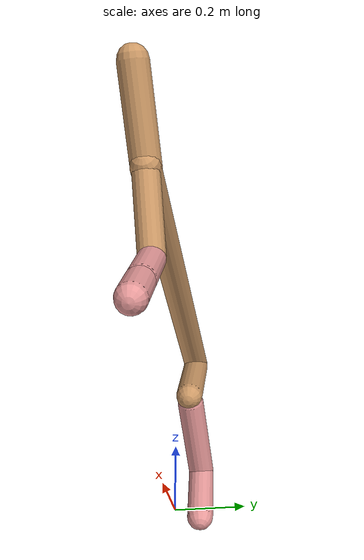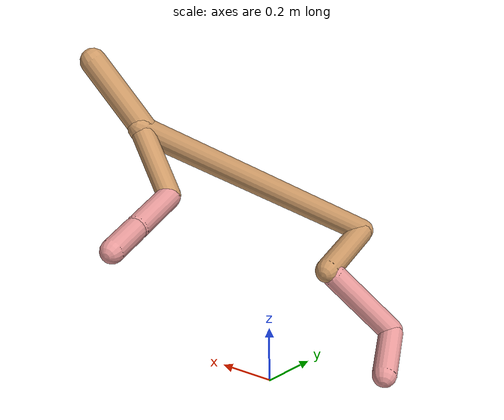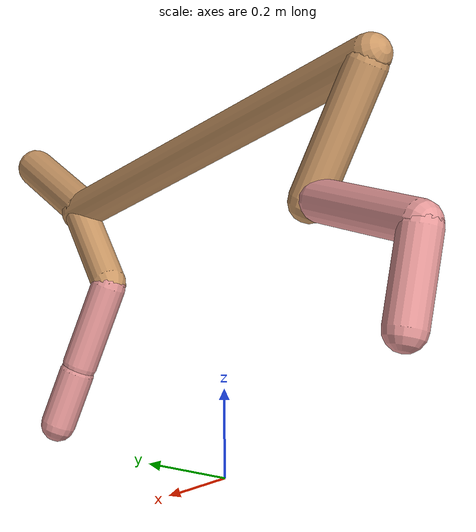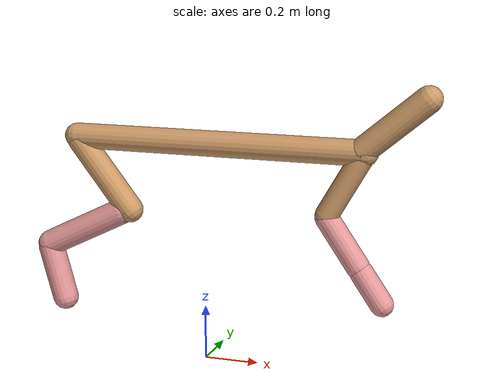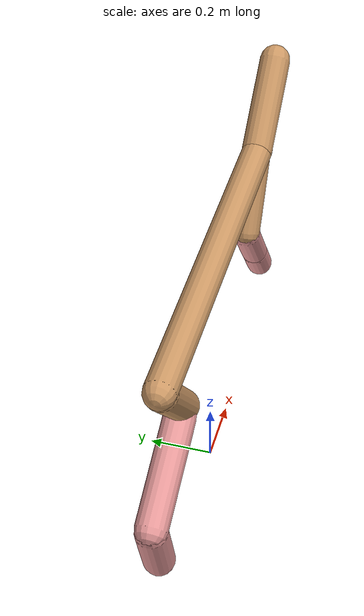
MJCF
<mujoco model="cheetah">
  <compiler angle="radian" coordinate="local" inertiafromgeom="true" settotalmass="14" />
  <default>
    <joint armature=".1" damping=".01" limited="true" solimplimit="0 .8 .03" solreflimit=".02 1" stiffness="8" />
    <geom conaffinity="0" condim="3" contype="1" friction="0.8 .1 .1" rgba="0.8 0.6 .4 1" solimp="0.0 0.8 0.01" solref="0.02 1" />
    <motor ctrllimited="true" ctrlrange="-1 1" />
  </default>
  <size nstack="300000" nuser_geom="1" />
  <option gravity="0 0 -9.81" timestep="0.01" />
  <worldbody>
    <body name="torso" pos="0.0 0.0 0.8093216320199941">
      <joint armature="0" axis="1 0 0" damping="0" limited="false" name="ignorex" pos="0 0 0" stiffness="0" type="slide" />
      <joint armature="0" axis="0 0 1" damping="0" limited="false" name="ignorez" pos="0 0 0" stiffness="0" type="slide" />
      <joint armature="0" axis="0 1 0" damping="0" limited="false" name="ignorey" pos="0 0 0" stiffness="0" type="hinge" />
      <geom fromto="-0.5 0.0 0.0 0.5853838795221341 0.0 0.0" name="torso" size="0.047002848198227844" type="capsule" />
      <geom axisangle="0 1 0 .87" name="head" pos="0.685383879522134 0.0 0.1" size="0.04818130446643834 0.15" type="capsule" />

      <body name="bthigh" pos="-.5 0 0">
        <joint axis="0 1 0" damping="6" name="bthigh" pos="0 0 0" range="-.52 1.05" stiffness="240" type="hinge" />
        <geom axisangle="0 1 0 -3.8" name="bthigh" pos="0.1081906046086906 0.0 -0.14064778599129776" size="0.04818303147346885 0.15843359037533825" type="capsule" />
        <body name="bshin" pos="0.17638120921738118 0.0 -0.2712955719825955">
          <joint axis="0 1 0" damping="4.5" name="bshin" pos="0 0 0" range="-.785 .785" stiffness="180" type="hinge" />
          <geom axisangle="0 1 0 -2.03" name="bshin" pos="-0.15242969155633515 0.0 -0.07621484577816758" rgba="0.9 0.6 0.6 1" size="0.04818303147346885 0.16389681762966024" type="capsule" />
          <body name="bfoot" pos="-0.3048593831126703 0.0 -0.15242969155633515">
            <joint axis="0 1 0" damping="3" name="bfoot" pos="0 0 0" range="-.4 .785" stiffness="120" type="hinge" />
            <geom axisangle="0 1 0 -.27" name="bfoot" pos="0.03257314901550811 0.0 -0.10531984848347624" rgba="0.9 0.6 0.6 1" size="0.04818303147346885 0.10270867238125375" type="capsule" />
            <inertial mass="10" />
          </body>
        </body>
      </body>
      <body name="fthigh" pos="0.585383879522134 0.0 0.0">
        <joint axis="0 1 0" damping="4.5" name="fthigh" pos="0 0 0" range="-1.5 0.8" stiffness="180" type="hinge" />
        <geom axisangle="0 1 0 .52" name="fthigh" pos="-0.06896608661356823 0.0 -0.11822757705183125" size="0.042552415363341076 0.1309480594555792" type="capsule" />
        <body name="fshin" pos="-0.13793217322713647 0.0 -0.2364551541036625">
          <joint axis="0 1 0" damping="3" name="fshin" pos="0 0 0" range="-1.2 1.1" stiffness="120" type="hinge" />
          <geom axisangle="0 1 0 -.6" name="fshin" pos="0.06404249976379162 0.0 -0.088674230442173" rgba="0.9 0.6 0.6 1" size="0.042552415363341076 0.104364618814221" type="capsule" />
          <body name="ffoot" pos="0.12808499952758323 0.0 -0.177348460884346">
            <joint axis="0 1 0" damping="1.5" name="ffoot" pos="0 0 0" range="-3.1 -0.3" stiffness="60" type="hinge" />
            <geom axisangle="0 1 0 -.6" name="ffoot" pos="0.04441599872298973 0.0 -0.06909155356909515" rgba="0.9 0.6 0.6 1" size="0.042552415363341076 0.0689200312924101" type="capsule" />
            <inertial mass="10" />
          </body>
        </body>
      </body>
    </body>
  </worldbody>
  <actuator>
    <motor gear="120" joint="bthigh" name="bthigh" />
    <motor gear="90" joint="bshin" name="bshin" />
    <motor gear="60" joint="bfoot" name="bfoot" />
    <motor gear="120" joint="fthigh" name="fthigh" />
    <motor gear="60" joint="fshin" name="fshin" />
    <motor gear="30" joint="ffoot" name="ffoot" />
  </actuator>
</mujoco>
